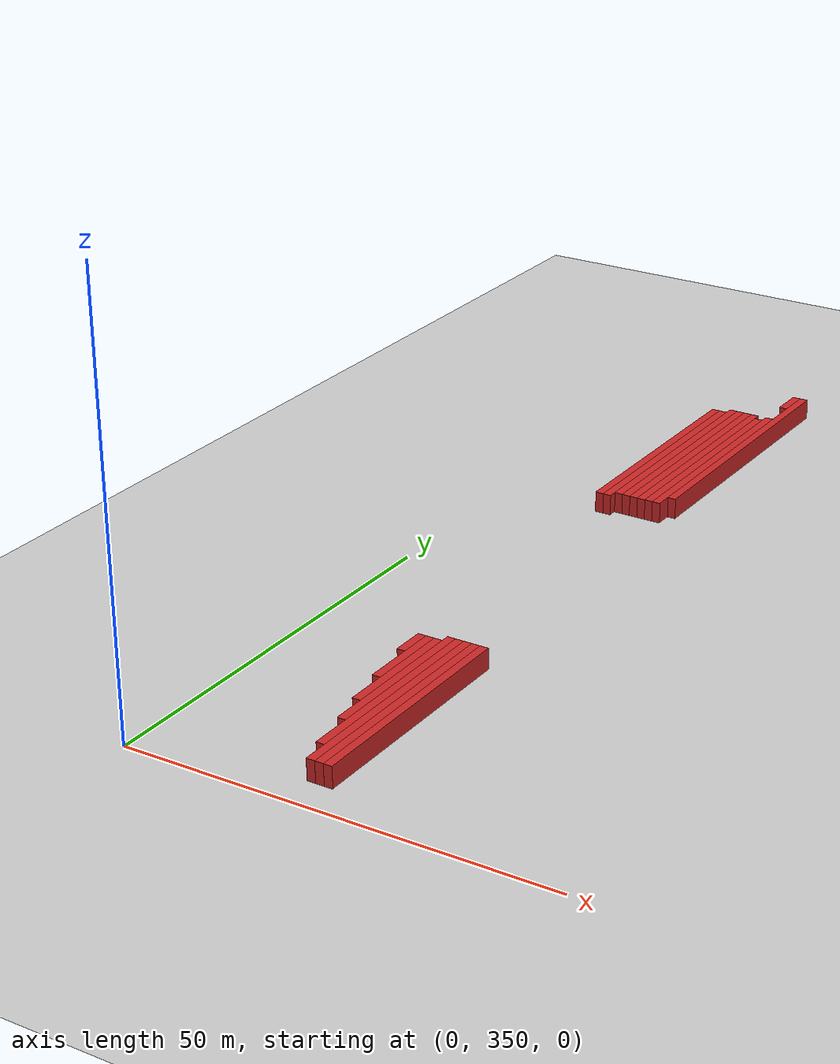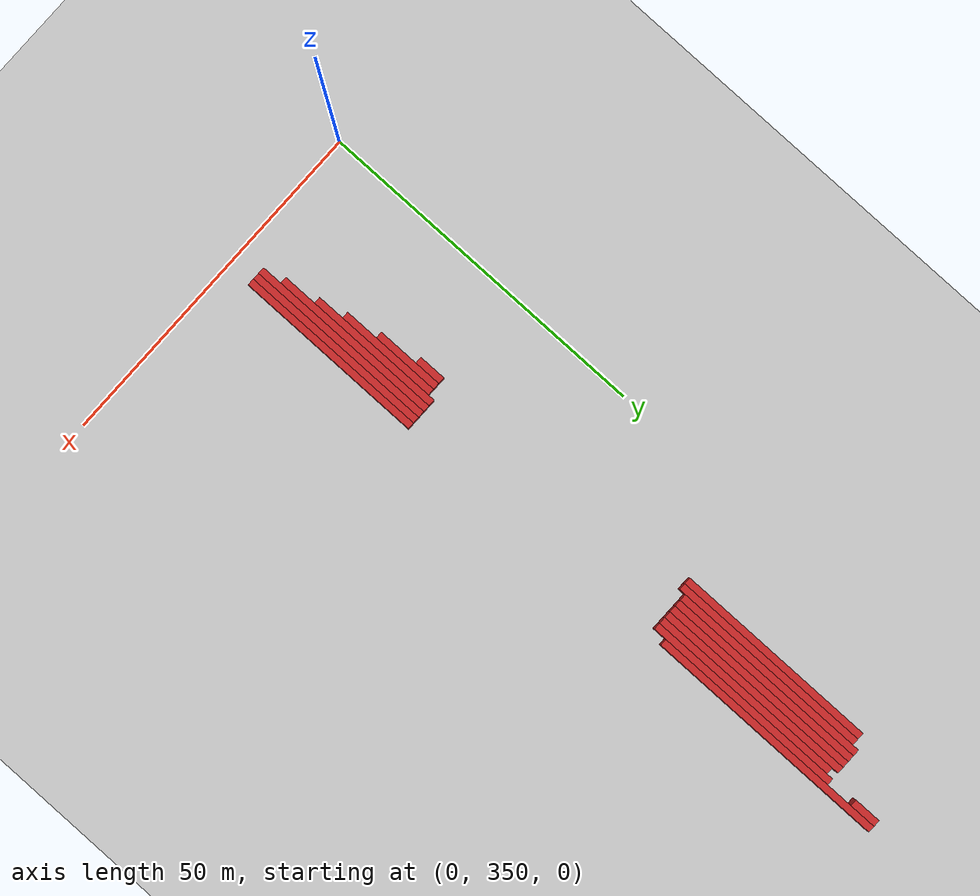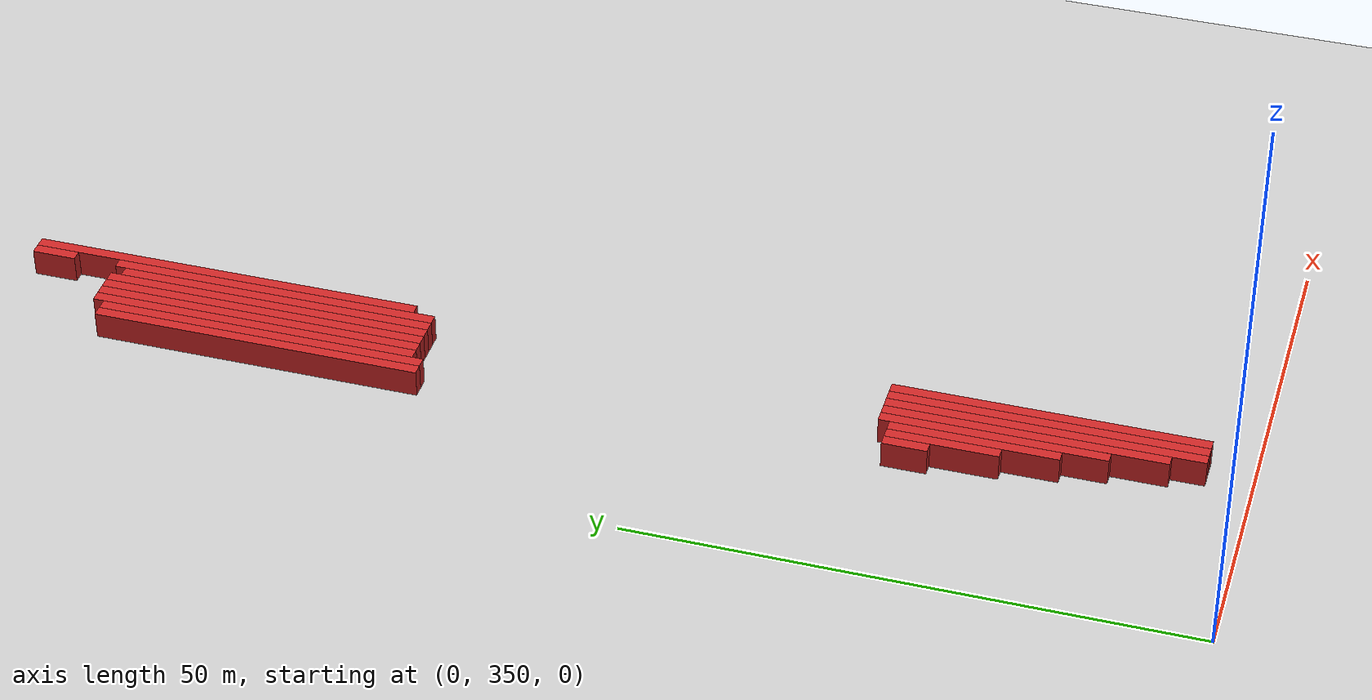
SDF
<sdf version="1.4">
 <world name="1_wall">
  <model name="ground_plane">
   <static>1</static>
   <link name="link">
    <collision name="collision">
     <geometry><plane><normal>0 0 1</normal><size>1000 1000</size></plane></geometry>
     <surface><friction><ode><mu>100</mu><mu2>50</mu2></ode></friction></surface>
    </collision>
    <visual name="visual">
     <cast_shadows>0</cast_shadows>
     <geometry><plane><normal>0 0 1</normal><size>10000 10000</size></plane></geometry>
     <material>
      <script><uri>file://media/materials/scripts/gazebo.material</uri><name>Gazebo/Grey</name></script>
     </material>
    </visual>
    <velocity_decay><linear>0</linear><angular>0</angular></velocity_decay>
   </link>
  </model>
  <model name="Wall_19">
   <static>1</static>
   <link name="Wall_19">
    <collision name="Wall_Collision_19">
     <geometry><box><size>30.0 1.0 2.5</size></box></geometry>
     <pose>0 0 1.25 0 -0 0</pose>
    </collision>
    <visual name="Wall_Visual_19">
     <pose>0 0 1.25 0 -0 0</pose>
     <geometry><box><size>30.0 1.0 2.5</size></box></geometry>
     <material>
      <script><uri>file://media/materials/scripts/gazebo.material</uri><name>Gazebo/Red</name></script>
     </material>
    </visual>
    <velocity_decay><linear>0</linear><angular>0</angular></velocity_decay>
    <pose>12.5 437.0 0 0 0 1.5707963267948966</pose>
   </link>
  </model>
  <model name="Wall_20">
   <static>1</static>
   <link name="Wall_20">
    <collision name="Wall_Collision_20">
     <geometry><box><size>30.0 1.0 2.5</size></box></geometry>
     <pose>0 0 1.25 0 -0 0</pose>
    </collision>
    <visual name="Wall_Visual_20">
     <pose>0 0 1.25 0 -0 0</pose>
     <geometry><box><size>30.0 1.0 2.5</size></box></geometry>
     <material>
      <script><uri>file://media/materials/scripts/gazebo.material</uri><name>Gazebo/Red</name></script>
     </material>
    </visual>
    <velocity_decay><linear>0</linear><angular>0</angular></velocity_decay>
    <pose>13.5 437.0 0 0 0 1.5707963267948966</pose>
   </link>
  </model>
  <model name="Wall_21">
   <static>1</static>
   <link name="Wall_21">
    <collision name="Wall_Collision_21">
     <geometry><box><size>4.0 1.0 2.5</size></box></geometry>
     <pose>0 0 1.25 0 -0 0</pose>
    </collision>
    <visual name="Wall_Visual_21">
     <pose>0 0 1.25 0 -0 0</pose>
     <geometry><box><size>4.0 1.0 2.5</size></box></geometry>
     <material>
      <script><uri>file://media/materials/scripts/gazebo.material</uri><name>Gazebo/Red</name></script>
     </material>
    </visual>
    <velocity_decay><linear>0</linear><angular>0</angular></velocity_decay>
    <pose>14.5 379.0 0 0 0 1.5707963267948966</pose>
   </link>
  </model>
  <model name="Wall_22">
   <static>1</static>
   <link name="Wall_22">
    <collision name="Wall_Collision_22">
     <geometry><box><size>30.0 1.0 2.5</size></box></geometry>
     <pose>0 0 1.25 0 -0 0</pose>
    </collision>
    <visual name="Wall_Visual_22">
     <pose>0 0 1.25 0 -0 0</pose>
     <geometry><box><size>30.0 1.0 2.5</size></box></geometry>
     <material>
      <script><uri>file://media/materials/scripts/gazebo.material</uri><name>Gazebo/Red</name></script>
     </material>
    </visual>
    <velocity_decay><linear>0</linear><angular>0</angular></velocity_decay>
    <pose>14.5 438.0 0 0 0 1.5707963267948966</pose>
   </link>
  </model>
  <model name="Wall_23">
   <static>1</static>
   <link name="Wall_23">
    <collision name="Wall_Collision_23">
     <geometry><box><size>10.0 1.0 2.5</size></box></geometry>
     <pose>0 0 1.25 0 -0 0</pose>
    </collision>
    <visual name="Wall_Visual_23">
     <pose>0 0 1.25 0 -0 0</pose>
     <geometry><box><size>10.0 1.0 2.5</size></box></geometry>
     <material>
      <script><uri>file://media/materials/scripts/gazebo.material</uri><name>Gazebo/Red</name></script>
     </material>
    </visual>
    <velocity_decay><linear>0</linear><angular>0</angular></velocity_decay>
    <pose>15.5 376.0 0 0 0 1.5707963267948966</pose>
   </link>
  </model>
  <model name="Wall_24">
   <static>1</static>
   <link name="Wall_24">
    <collision name="Wall_Collision_24">
     <geometry><box><size>30.0 1.0 2.5</size></box></geometry>
     <pose>0 0 1.25 0 -0 0</pose>
    </collision>
    <visual name="Wall_Visual_24">
     <pose>0 0 1.25 0 -0 0</pose>
     <geometry><box><size>30.0 1.0 2.5</size></box></geometry>
     <material>
      <script><uri>file://media/materials/scripts/gazebo.material</uri><name>Gazebo/Red</name></script>
     </material>
    </visual>
    <velocity_decay><linear>0</linear><angular>0</angular></velocity_decay>
    <pose>15.5 438.0 0 0 0 1.5707963267948966</pose>
   </link>
  </model>
  <model name="Wall_25">
   <static>1</static>
   <link name="Wall_25">
    <collision name="Wall_Collision_25">
     <geometry><box><size>15.0 1.0 2.5</size></box></geometry>
     <pose>0 0 1.25 0 -0 0</pose>
    </collision>
    <visual name="Wall_Visual_25">
     <pose>0 0 1.25 0 -0 0</pose>
     <geometry><box><size>15.0 1.0 2.5</size></box></geometry>
     <material>
      <script><uri>file://media/materials/scripts/gazebo.material</uri><name>Gazebo/Red</name></script>
     </material>
    </visual>
    <velocity_decay><linear>0</linear><angular>0</angular></velocity_decay>
    <pose>16.5 373.5 0 0 0 1.5707963267948966</pose>
   </link>
  </model>
  <model name="Wall_26">
   <static>1</static>
   <link name="Wall_26">
    <collision name="Wall_Collision_26">
     <geometry><box><size>30.0 1.0 2.5</size></box></geometry>
     <pose>0 0 1.25 0 -0 0</pose>
    </collision>
    <visual name="Wall_Visual_26">
     <pose>0 0 1.25 0 -0 0</pose>
     <geometry><box><size>30.0 1.0 2.5</size></box></geometry>
     <material>
      <script><uri>file://media/materials/scripts/gazebo.material</uri><name>Gazebo/Red</name></script>
     </material>
    </visual>
    <velocity_decay><linear>0</linear><angular>0</angular></velocity_decay>
    <pose>16.5 438.0 0 0 0 1.5707963267948966</pose>
   </link>
  </model>
  <model name="Wall_27">
   <static>1</static>
   <link name="Wall_27">
    <collision name="Wall_Collision_27">
     <geometry><box><size>20.0 1.0 2.5</size></box></geometry>
     <pose>0 0 1.25 0 -0 0</pose>
    </collision>
    <visual name="Wall_Visual_27">
     <pose>0 0 1.25 0 -0 0</pose>
     <geometry><box><size>20.0 1.0 2.5</size></box></geometry>
     <material>
      <script><uri>file://media/materials/scripts/gazebo.material</uri><name>Gazebo/Red</name></script>
     </material>
    </visual>
    <velocity_decay><linear>0</linear><angular>0</angular></velocity_decay>
    <pose>17.5 372.0 0 0 0 1.5707963267948966</pose>
   </link>
  </model>
  <model name="Wall_28">
   <static>1</static>
   <link name="Wall_28">
    <collision name="Wall_Collision_28">
     <geometry><box><size>30.0 1.0 2.5</size></box></geometry>
     <pose>0 0 1.25 0 -0 0</pose>
    </collision>
    <visual name="Wall_Visual_28">
     <pose>0 0 1.25 0 -0 0</pose>
     <geometry><box><size>30.0 1.0 2.5</size></box></geometry>
     <material>
      <script><uri>file://media/materials/scripts/gazebo.material</uri><name>Gazebo/Red</name></script>
     </material>
    </visual>
    <velocity_decay><linear>0</linear><angular>0</angular></velocity_decay>
    <pose>17.5 438.0 0 0 0 1.5707963267948966</pose>
   </link>
  </model>
  <model name="Wall_29">
   <static>1</static>
   <link name="Wall_29">
    <collision name="Wall_Collision_29">
     <geometry><box><size>25.0 1.0 2.5</size></box></geometry>
     <pose>0 0 1.25 0 -0 0</pose>
    </collision>
    <visual name="Wall_Visual_29">
     <pose>0 0 1.25 0 -0 0</pose>
     <geometry><box><size>25.0 1.0 2.5</size></box></geometry>
     <material>
      <script><uri>file://media/materials/scripts/gazebo.material</uri><name>Gazebo/Red</name></script>
     </material>
    </visual>
    <velocity_decay><linear>0</linear><angular>0</angular></velocity_decay>
    <pose>18.5 369.5 0 0 0 1.5707963267948966</pose>
   </link>
  </model>
  <model name="Wall_30">
   <static>1</static>
   <link name="Wall_30">
    <collision name="Wall_Collision_30">
     <geometry><box><size>29.0 1.0 2.5</size></box></geometry>
     <pose>0 0 1.25 0 -0 0</pose>
    </collision>
    <visual name="Wall_Visual_30">
     <pose>0 0 1.25 0 -0 0</pose>
     <geometry><box><size>29.0 1.0 2.5</size></box></geometry>
     <material>
      <script><uri>file://media/materials/scripts/gazebo.material</uri><name>Gazebo/Red</name></script>
     </material>
    </visual>
    <velocity_decay><linear>0</linear><angular>0</angular></velocity_decay>
    <pose>18.5 437.5 0 0 0 1.5707963267948966</pose>
   </link>
  </model>
  <model name="Wall_31">
   <static>1</static>
   <link name="Wall_31">
    <collision name="Wall_Collision_31">
     <geometry><box><size>28.0 1.0 2.5</size></box></geometry>
     <pose>0 0 1.25 0 -0 0</pose>
    </collision>
    <visual name="Wall_Visual_31">
     <pose>0 0 1.25 0 -0 0</pose>
     <geometry><box><size>28.0 1.0 2.5</size></box></geometry>
     <material>
      <script><uri>file://media/materials/scripts/gazebo.material</uri><name>Gazebo/Red</name></script>
     </material>
    </visual>
    <velocity_decay><linear>0</linear><angular>0</angular></velocity_decay>
    <pose>19.5 368.0 0 0 0 1.5707963267948966</pose>
   </link>
  </model>
  <model name="Wall_32">
   <static>1</static>
   <link name="Wall_32">
    <collision name="Wall_Collision_32">
     <geometry><box><size>30.0 1.0 2.5</size></box></geometry>
     <pose>0 0 1.25 0 -0 0</pose>
    </collision>
    <visual name="Wall_Visual_32">
     <pose>0 0 1.25 0 -0 0</pose>
     <geometry><box><size>30.0 1.0 2.5</size></box></geometry>
     <material>
      <script><uri>file://media/materials/scripts/gazebo.material</uri><name>Gazebo/Red</name></script>
     </material>
    </visual>
    <velocity_decay><linear>0</linear><angular>0</angular></velocity_decay>
    <pose>19.5 438.0 0 0 0 1.5707963267948966</pose>
   </link>
  </model>
  <model name="Wall_33">
   <static>1</static>
   <link name="Wall_33">
    <collision name="Wall_Collision_33">
     <geometry><box><size>4.0 1.0 2.5</size></box></geometry>
     <pose>0 0 1.25 0 -0 0</pose>
    </collision>
    <visual name="Wall_Visual_33">
     <pose>0 0 1.25 0 -0 0</pose>
     <geometry><box><size>4.0 1.0 2.5</size></box></geometry>
     <material>
      <script><uri>file://media/materials/scripts/gazebo.material</uri><name>Gazebo/Red</name></script>
     </material>
    </visual>
    <velocity_decay><linear>0</linear><angular>0</angular></velocity_decay>
    <pose>19.5 459.0 0 0 0 1.5707963267948966</pose>
   </link>
  </model>
  <model name="Wall_34">
   <static>1</static>
   <link name="Wall_34">
    <collision name="Wall_Collision_34">
     <geometry><box><size>28.0 1.0 2.5</size></box></geometry>
     <pose>0 0 1.25 0 -0 0</pose>
    </collision>
    <visual name="Wall_Visual_34">
     <pose>0 0 1.25 0 -0 0</pose>
     <geometry><box><size>28.0 1.0 2.5</size></box></geometry>
     <material>
      <script><uri>file://media/materials/scripts/gazebo.material</uri><name>Gazebo/Red</name></script>
     </material>
    </visual>
    <velocity_decay><linear>0</linear><angular>0</angular></velocity_decay>
    <pose>20.5 368.0 0 0 0 1.5707963267948966</pose>
   </link>
  </model>
  <model name="Wall_35">
   <static>1</static>
   <link name="Wall_35">
    <collision name="Wall_Collision_35">
     <geometry><box><size>36.0 1.0 2.5</size></box></geometry>
     <pose>0 0 1.25 0 -0 0</pose>
    </collision>
    <visual name="Wall_Visual_35">
     <pose>0 0 1.25 0 -0 0</pose>
     <geometry><box><size>36.0 1.0 2.5</size></box></geometry>
     <material>
      <script><uri>file://media/materials/scripts/gazebo.material</uri><name>Gazebo/Red</name></script>
     </material>
    </visual>
    <velocity_decay><linear>0</linear><angular>0</angular></velocity_decay>
    <pose>20.5 443.0 0 0 0 1.5707963267948966</pose>
   </link>
  </model>
  <model name="Wall_36">
   <static>1</static>
   <link name="Wall_36">
    <collision name="Wall_Collision_36">
     <geometry><box><size>28.0 1.0 2.5</size></box></geometry>
     <pose>0 0 1.25 0 -0 0</pose>
    </collision>
    <visual name="Wall_Visual_36">
     <pose>0 0 1.25 0 -0 0</pose>
     <geometry><box><size>28.0 1.0 2.5</size></box></geometry>
     <material>
      <script><uri>file://media/materials/scripts/gazebo.material</uri><name>Gazebo/Red</name></script>
     </material>
    </visual>
    <velocity_decay><linear>0</linear><angular>0</angular></velocity_decay>
    <pose>21.5 368.0 0 0 0 1.5707963267948966</pose>
   </link>
  </model>
 </world>
</sdf>
